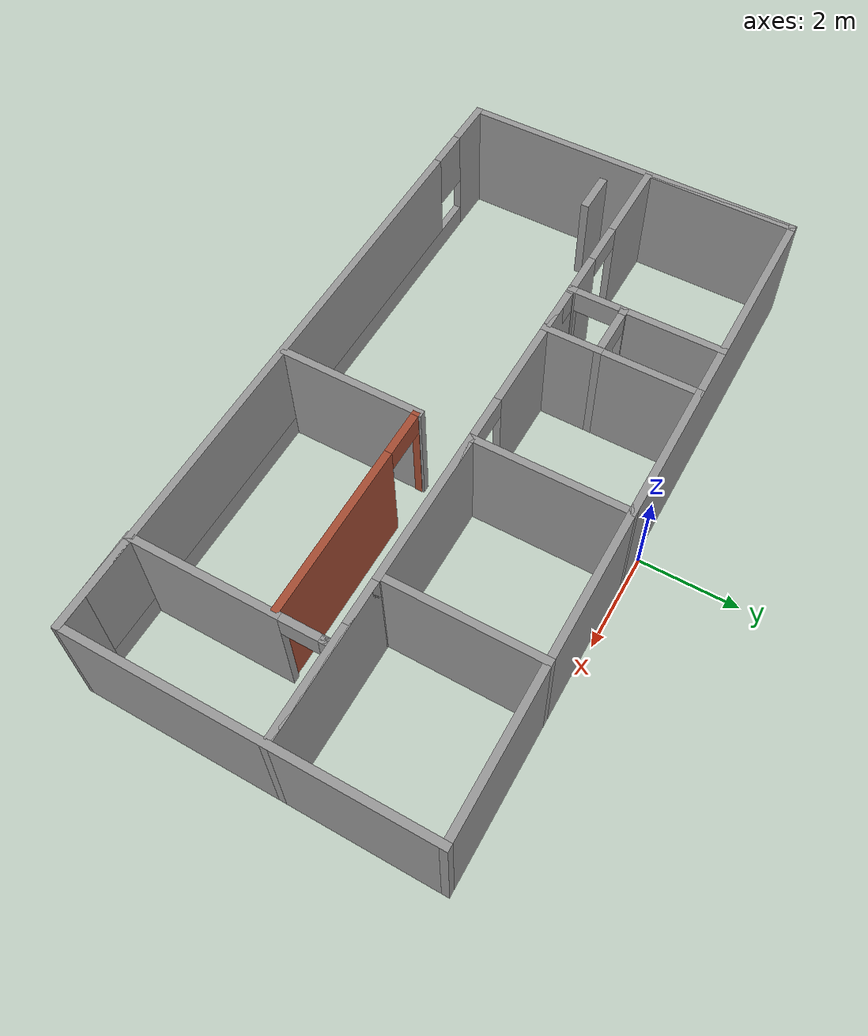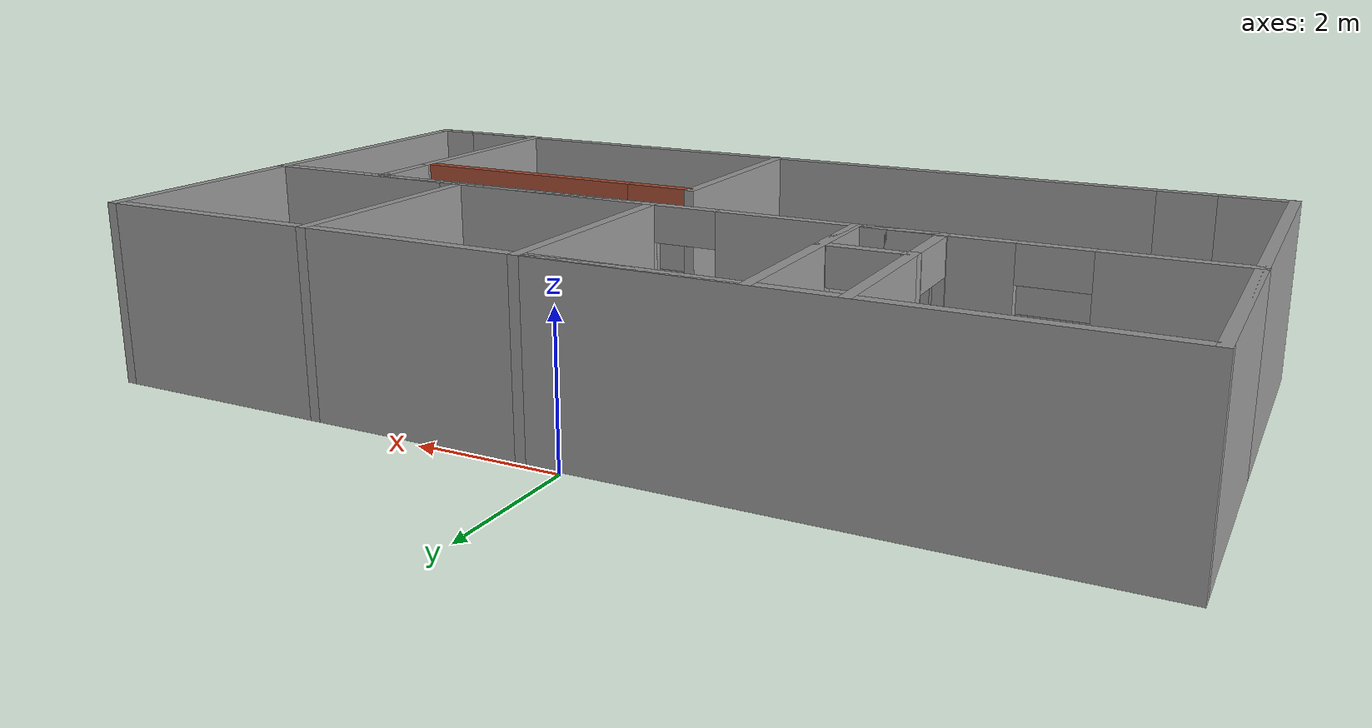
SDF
<?xml version='1.0'?>
<sdf version='1.6'>
  <model name='model'>
    <pose frame=''>0.015621 -3.70069 0 0 -0 0</pose>
    <link name='Door_0'>
      <collision name='Door_0_Collision'>
        <geometry>
          <box>
            <size>0.9 0.17 2</size>
          </box>
        </geometry>
        <pose frame=''>0 0 1 0 -0 0</pose>
      </collision>
      <visual name='Door_0_Visual'>
        <pose frame=''>0 0 1 0 -0 0</pose>
        <geometry>
          <box>
            <size>0.9 0.17 2</size>
          </box>
        </geometry>
        <material>
          <script>
            <uri>file://media/materials/scripts/gazebo.material</uri>
            <name>Gazebo/Grey</name>
          </script>
        </material>
      </visual>
      <pose frame=''>-6.39512 -0.487309 0 0 -0 0</pose>
    </link>
    <link name='Wall_0'>
      <collision name='Wall_0_Collision'>
        <geometry>
          <box>
            <size>7.2155 0.15 2.5</size>
          </box>
        </geometry>
        <pose frame=''>0 0 1.25 0 -0 0</pose>
      </collision>
      <visual name='Wall_0_Visual'>
        <pose frame=''>0 0 1.25 0 -0 0</pose>
        <geometry>
          <box>
            <size>7.2155 0.15 2.5</size>
          </box>
        </geometry>
        <material>
          <script>
            <uri>file://media/materials/scripts/gazebo.material</uri>
            <name>Gazebo/Grey</name>
          </script>
          <ambient>1 1 1 1</ambient>
        </material>
        <meta>
          <layer>0</layer>
        </meta>
      </visual>
      <pose frame=''>-6.92562 0.017941 0 0 -0 -1.5708</pose>
    </link>
    <link name='Wall_13'>
      <pose frame=''>-0.000621 -3.52631 0 0 -0 0</pose>
      <visual name='Wall_13_Visual_0'>
        <pose frame=''>-6.48325 0 1.25 0 -0 0</pose>
        <geometry>
          <box>
            <size>1.0335 0.15 2.5</size>
          </box>
        </geometry>
        <material>
          <script>
            <uri>file://media/materials/scripts/gazebo.material</uri>
            <name>Gazebo/Grey</name>
          </script>
          <ambient>1 1 1 1</ambient>
        </material>
        <meta>
          <layer>0</layer>
        </meta>
      </visual>
      <collision name='Wall_13_Collision_0'>
        <geometry>
          <box>
            <size>1.0335 0.15 2.5</size>
          </box>
        </geometry>
        <pose frame=''>-6.48325 0 1.25 0 -0 0</pose>
      </collision>
      <visual name='Wall_13_Visual_1'>
        <pose frame=''>0.51675 0 0.25 0 -0 0</pose>
        <geometry>
          <box>
            <size>12.9665 0.15 0.5</size>
          </box>
        </geometry>
        <material>
          <script>
            <uri>file://media/materials/scripts/gazebo.material</uri>
            <name>Gazebo/Grey</name>
          </script>
          <ambient>1 1 1 1</ambient>
        </material>
        <meta>
          <layer>0</layer>
        </meta>
      </visual>
      <collision name='Wall_13_Collision_1'>
        <geometry>
          <box>
            <size>12.9665 0.15 0.5</size>
          </box>
        </geometry>
        <pose frame=''>0.51675 0 0.25 0 -0 0</pose>
      </collision>
      <visual name='Wall_13_Visual_2'>
        <pose frame=''>0.91675 0 1.5 0 -0 0</pose>
        <geometry>
          <box>
            <size>12.1665 0.15 2</size>
          </box>
        </geometry>
        <material>
          <script>
            <uri>file://media/materials/scripts/gazebo.material</uri>
            <name>Gazebo/Grey</name>
          </script>
          <ambient>1 1 1 1</ambient>
        </material>
        <meta>
          <layer>0</layer>
        </meta>
      </visual>
      <collision name='Wall_13_Collision_2'>
        <geometry>
          <box>
            <size>12.1665 0.15 2</size>
          </box>
        </geometry>
        <pose frame=''>0.91675 0 1.5 0 -0 0</pose>
      </collision>
      <visual name='Wall_13_Visual_3'>
        <pose frame=''>-5.5665 0 1.9 0 -0 0</pose>
        <geometry>
          <box>
            <size>0.8 0.15 1.2</size>
          </box>
        </geometry>
        <material>
          <script>
            <uri>file://media/materials/scripts/gazebo.material</uri>
            <name>Gazebo/Grey</name>
          </script>
          <ambient>1 1 1 1</ambient>
        </material>
        <meta>
          <layer>0</layer>
        </meta>
      </visual>
      <collision name='Wall_13_Collision_3'>
        <geometry>
          <box>
            <size>0.8 0.15 1.2</size>
          </box>
        </geometry>
        <pose frame=''>-5.5665 0 1.9 0 -0 0</pose>
      </collision>
    </link>
    <link name='Wall_14'>
      <collision name='Wall_14_Collision'>
        <geometry>
          <box>
            <size>7.2155 0.15 2.5</size>
          </box>
        </geometry>
        <pose frame=''>0 0 1.25 0 -0 0</pose>
      </collision>
      <visual name='Wall_14_Visual'>
        <pose frame=''>0 0 1.25 0 -0 0</pose>
        <geometry>
          <box>
            <size>7.2155 0.15 2.5</size>
          </box>
        </geometry>
        <material>
          <script>
            <uri>file://media/materials/scripts/gazebo.material</uri>
            <name>Gazebo/Grey</name>
          </script>
          <ambient>1 1 1 1</ambient>
        </material>
        <meta>
          <layer>0</layer>
        </meta>
      </visual>
      <pose frame=''>6.92438 0.017941 0 0 -0 1.5708</pose>
    </link>
    <link name='Wall_15'>
      <collision name='Wall_15_Collision'>
        <geometry>
          <box>
            <size>14 0.15 2.5</size>
          </box>
        </geometry>
        <pose frame=''>0 0 1.25 0 -0 0</pose>
      </collision>
      <visual name='Wall_15_Visual'>
        <pose frame=''>0 0 1.25 0 -0 0</pose>
        <geometry>
          <box>
            <size>14 0.15 2.5</size>
          </box>
        </geometry>
        <material>
          <script>
            <uri>file://media/materials/scripts/gazebo.material</uri>
            <name>Gazebo/Grey</name>
          </script>
          <ambient>1 1 1 1</ambient>
        </material>
        <meta>
          <layer>0</layer>
        </meta>
      </visual>
      <pose frame=''>-0.000621 3.55069 0 0 -0 3.14159</pose>
    </link>
    <link name='Wall_20'>
      <collision name='Wall_20_Collision'>
        <geometry>
          <box>
            <size>3.25 0.15 2.5</size>
          </box>
        </geometry>
        <pose frame=''>0 0 1.25 0 -0 0</pose>
      </collision>
      <visual name='Wall_20_Visual'>
        <pose frame=''>0 0 1.25 0 -0 0</pose>
        <geometry>
          <box>
            <size>3.25 0.15 2.5</size>
          </box>
        </geometry>
        <material>
          <script>
            <uri>file://media/materials/scripts/gazebo.material</uri>
            <name>Gazebo/Grey</name>
          </script>
          <ambient>1 1 1 1</ambient>
        </material>
        <meta>
          <layer>0</layer>
        </meta>
      </visual>
      <pose frame=''>-6.92562 2.00069 0 0 -0 -1.5708</pose>
    </link>
    <link name='Wall_21'>
      <pose frame=''>-0.000621 0.450691 0 0 -0 0</pose>
      <visual name='Wall_21_Visual_0'>
        <pose frame=''>-6.08275 0 1.25 0 -0 0</pose>
        <geometry>
          <box>
            <size>1.8345 0.15 2.5</size>
          </box>
        </geometry>
        <material>
          <script>
            <uri>file://media/materials/scripts/gazebo.material</uri>
            <name>Gazebo/Grey</name>
          </script>
          <ambient>1 1 1 1</ambient>
        </material>
        <meta>
          <layer>0</layer>
        </meta>
      </visual>
      <collision name='Wall_21_Collision_0'>
        <geometry>
          <box>
            <size>1.8345 0.15 2.5</size>
          </box>
        </geometry>
        <pose frame=''>-6.08275 0 1.25 0 -0 0</pose>
      </collision>
      <visual name='Wall_21_Visual_1'>
        <pose frame=''>-2.32925 0 1.25 0 -0 0</pose>
        <geometry>
          <box>
            <size>3.8725 0.15 2.5</size>
          </box>
        </geometry>
        <material>
          <script>
            <uri>file://media/materials/scripts/gazebo.material</uri>
            <name>Gazebo/Grey</name>
          </script>
          <ambient>1 1 1 1</ambient>
        </material>
        <meta>
          <layer>0</layer>
        </meta>
      </visual>
      <collision name='Wall_21_Collision_1'>
        <geometry>
          <box>
            <size>3.8725 0.15 2.5</size>
          </box>
        </geometry>
        <pose frame=''>-2.32925 0 1.25 0 -0 0</pose>
      </collision>
      <visual name='Wall_21_Visual_2'>
        <pose frame=''>3.7535 0 1.25 0 -0 0</pose>
        <geometry>
          <box>
            <size>6.493 0.15 2.5</size>
          </box>
        </geometry>
        <material>
          <script>
            <uri>file://media/materials/scripts/gazebo.material</uri>
            <name>Gazebo/Grey</name>
          </script>
          <ambient>1 1 1 1</ambient>
        </material>
        <meta>
          <layer>0</layer>
        </meta>
      </visual>
      <collision name='Wall_21_Collision_2'>
        <geometry>
          <box>
            <size>6.493 0.15 2.5</size>
          </box>
        </geometry>
        <pose frame=''>3.7535 0 1.25 0 -0 0</pose>
      </collision>
      <visual name='Wall_21_Visual_3'>
        <pose frame=''>-4.7155 0 2.25 0 -0 0</pose>
        <geometry>
          <box>
            <size>0.9 0.15 0.5</size>
          </box>
        </geometry>
        <material>
          <script>
            <uri>file://media/materials/scripts/gazebo.material</uri>
            <name>Gazebo/Grey</name>
          </script>
          <ambient>1 1 1 1</ambient>
        </material>
        <meta>
          <layer>0</layer>
        </meta>
      </visual>
      <collision name='Wall_21_Collision_3'>
        <geometry>
          <box>
            <size>0.9 0.15 0.5</size>
          </box>
        </geometry>
        <pose frame=''>-4.7155 0 2.25 0 -0 0</pose>
      </collision>
      <visual name='Wall_21_Visual_4'>
        <pose frame=''>0.057 0 2.25 0 -0 0</pose>
        <geometry>
          <box>
            <size>0.9 0.15 0.5</size>
          </box>
        </geometry>
        <material>
          <script>
            <uri>file://media/materials/scripts/gazebo.material</uri>
            <name>Gazebo/Grey</name>
          </script>
          <ambient>1 1 1 1</ambient>
        </material>
        <meta>
          <layer>0</layer>
        </meta>
      </visual>
      <collision name='Wall_21_Collision_4'>
        <geometry>
          <box>
            <size>0.9 0.15 0.5</size>
          </box>
        </geometry>
        <pose frame=''>0.057 0 2.25 0 -0 0</pose>
      </collision>
    </link>
    <link name='Wall_23'>
      <pose frame=''>2.80688 -0.663809 0 0 -0 3.14159</pose>
      <visual name='Wall_23_Visual_0'>
        <pose frame=''>-0.49225 0 1.25 0 -0 0</pose>
        <geometry>
          <box>
            <size>3.5155 0.15 2.5</size>
          </box>
        </geometry>
        <material>
          <script>
            <uri>file://media/materials/scripts/gazebo.material</uri>
            <name>Gazebo/Bricks</name>
          </script>
          <ambient>0.435294 0.796078 0.67451 1</ambient>
        </material>
        <meta>
          <layer>0</layer>
        </meta>
      </visual>
      <collision name='Wall_23_Collision_0'>
        <geometry>
          <box>
            <size>3.5155 0.15 2.5</size>
          </box>
        </geometry>
        <pose frame=''>-0.49225 0 1.25 0 -0 0</pose>
      </collision>
      <visual name='Wall_23_Visual_1'>
        <pose frame=''>2.20775 0 1.25 0 -0 0</pose>
        <geometry>
          <box>
            <size>0.0845 0.15 2.5</size>
          </box>
        </geometry>
        <material>
          <script>
            <uri>file://media/materials/scripts/gazebo.material</uri>
            <name>Gazebo/Bricks</name>
          </script>
          <ambient>0.435294 0.796078 0.67451 1</ambient>
        </material>
        <meta>
          <layer>0</layer>
        </meta>
      </visual>
      <collision name='Wall_23_Collision_1'>
        <geometry>
          <box>
            <size>0.0845 0.15 2.5</size>
          </box>
        </geometry>
        <pose frame=''>2.20775 0 1.25 0 -0 0</pose>
      </collision>
      <visual name='Wall_23_Visual_2'>
        <pose frame=''>1.7155 0 2.25 0 -0 0</pose>
        <geometry>
          <box>
            <size>0.9 0.15 0.5</size>
          </box>
        </geometry>
        <material>
          <script>
            <uri>file://media/materials/scripts/gazebo.material</uri>
            <name>Gazebo/Bricks</name>
          </script>
          <ambient>0.435294 0.796078 0.67451 1</ambient>
        </material>
        <meta>
          <layer>0</layer>
        </meta>
      </visual>
      <collision name='Wall_23_Collision_2'>
        <geometry>
          <box>
            <size>0.9 0.15 0.5</size>
          </box>
        </geometry>
        <pose frame=''>1.7155 0 2.25 0 -0 0</pose>
      </collision>
    </link>
    <link name='Wall_25'>
      <collision name='Wall_25_Collision'>
        <geometry>
          <box>
            <size>2.00004 0.15 2.5</size>
          </box>
        </geometry>
        <pose frame=''>0 0 1.25 0 -0 0</pose>
      </collision>
      <visual name='Wall_25_Visual'>
        <pose frame=''>0 0 1.25 0 -0 0</pose>
        <geometry>
          <box>
            <size>2.00004 0.15 2.5</size>
          </box>
        </geometry>
        <material>
          <script>
            <uri>file://media/materials/scripts/gazebo.material</uri>
            <name>Gazebo/Grey</name>
          </script>
          <ambient>1 1 1 1</ambient>
        </material>
        <meta>
          <layer>0</layer>
        </meta>
      </visual>
      <pose frame=''>5.99938 -3.53206 0 0 -0 -3.12295</pose>
    </link>
    <link name='Wall_26'>
      <pose frame=''>5.07438 -1.62431 0 0 -0 1.5708</pose>
      <visual name='Wall_26_Visual_0'>
        <pose frame=''>-0.461 0 1.25 0 -0 0</pose>
        <geometry>
          <box>
            <size>3.078 0.15 2.5</size>
          </box>
        </geometry>
        <material>
          <script>
            <uri>file://media/materials/scripts/gazebo.material</uri>
            <name>Gazebo/Grey</name>
          </script>
          <ambient>1 1 1 1</ambient>
        </material>
        <meta>
          <layer>0</layer>
        </meta>
      </visual>
      <collision name='Wall_26_Collision_0'>
        <geometry>
          <box>
            <size>3.078 0.15 2.5</size>
          </box>
        </geometry>
        <pose frame=''>-0.461 0 1.25 0 -0 0</pose>
      </collision>
      <visual name='Wall_26_Visual_1'>
        <pose frame=''>1.989 0 1.25 0 -0 0</pose>
        <geometry>
          <box>
            <size>0.022 0.15 2.5</size>
          </box>
        </geometry>
        <material>
          <script>
            <uri>file://media/materials/scripts/gazebo.material</uri>
            <name>Gazebo/Grey</name>
          </script>
          <ambient>1 1 1 1</ambient>
        </material>
        <meta>
          <layer>0</layer>
        </meta>
      </visual>
      <collision name='Wall_26_Collision_1'>
        <geometry>
          <box>
            <size>0.022 0.15 2.5</size>
          </box>
        </geometry>
        <pose frame=''>1.989 0 1.25 0 -0 0</pose>
      </collision>
      <visual name='Wall_26_Visual_2'>
        <pose frame=''>1.528 0 2.25 0 -0 0</pose>
        <geometry>
          <box>
            <size>0.9 0.15 0.5</size>
          </box>
        </geometry>
        <material>
          <script>
            <uri>file://media/materials/scripts/gazebo.material</uri>
            <name>Gazebo/Grey</name>
          </script>
          <ambient>1 1 1 1</ambient>
        </material>
        <meta>
          <layer>0</layer>
        </meta>
      </visual>
      <collision name='Wall_26_Collision_2'>
        <geometry>
          <box>
            <size>0.9 0.15 0.5</size>
          </box>
        </geometry>
        <pose frame=''>1.528 0 2.25 0 -0 0</pose>
      </collision>
    </link>
    <link name='Wall_27'>
      <collision name='Wall_27_Collision'>
        <geometry>
          <box>
            <size>0.15 0.15 2.5</size>
          </box>
        </geometry>
        <pose frame=''>0 0 1.25 0 -0 0</pose>
      </collision>
      <visual name='Wall_27_Visual'>
        <pose frame=''>0 0 1.25 0 -0 0</pose>
        <geometry>
          <box>
            <size>0.15 0.15 2.5</size>
          </box>
        </geometry>
        <material>
          <script>
            <uri>file://media/materials/scripts/gazebo.material</uri>
            <name>Gazebo/Grey</name>
          </script>
          <ambient>1 1 1 1</ambient>
        </material>
        <meta>
          <layer>0</layer>
        </meta>
      </visual>
      <pose frame=''>5.07438 0.300691 0 0 -0 0</pose>
    </link>
    <link name='Wall_29'>
      <pose frame=''>3.74938 0.450691 0 0 -0 3.14159</pose>
      <visual name='Wall_29_Visual_0'>
        <pose frame=''>-2.09075 0 1.25 0 -0 0</pose>
        <geometry>
          <box>
            <size>2.3185 0.15 2.5</size>
          </box>
        </geometry>
        <material>
          <script>
            <uri>file://media/materials/scripts/gazebo.material</uri>
            <name>Gazebo/Grey</name>
          </script>
          <ambient>1 1 1 1</ambient>
        </material>
        <meta>
          <layer>0</layer>
        </meta>
      </visual>
      <collision name='Wall_29_Collision_0'>
        <geometry>
          <box>
            <size>2.3185 0.15 2.5</size>
          </box>
        </geometry>
        <pose frame=''>-2.09075 0 1.25 0 -0 0</pose>
      </collision>
      <visual name='Wall_29_Visual_1'>
        <pose frame=''>1.60925 0 1.25 0 -0 0</pose>
        <geometry>
          <box>
            <size>3.2815 0.15 2.5</size>
          </box>
        </geometry>
        <material>
          <script>
            <uri>file://media/materials/scripts/gazebo.material</uri>
            <name>Gazebo/Grey</name>
          </script>
          <ambient>1 1 1 1</ambient>
        </material>
        <meta>
          <layer>0</layer>
        </meta>
      </visual>
      <collision name='Wall_29_Collision_1'>
        <geometry>
          <box>
            <size>3.2815 0.15 2.5</size>
          </box>
        </geometry>
        <pose frame=''>1.60925 0 1.25 0 -0 0</pose>
      </collision>
      <visual name='Wall_29_Visual_2'>
        <pose frame=''>-0.4815 0 2.25 0 -0 0</pose>
        <geometry>
          <box>
            <size>0.9 0.15 0.5</size>
          </box>
        </geometry>
        <material>
          <script>
            <uri>file://media/materials/scripts/gazebo.material</uri>
            <name>Gazebo/Grey</name>
          </script>
          <ambient>1 1 1 1</ambient>
        </material>
        <meta>
          <layer>0</layer>
        </meta>
      </visual>
      <collision name='Wall_29_Collision_2'>
        <geometry>
          <box>
            <size>0.9 0.15 0.5</size>
          </box>
        </geometry>
        <pose frame=''>-0.4815 0 2.25 0 -0 0</pose>
      </collision>
    </link>
    <link name='Wall_30'>
      <collision name='Wall_30_Collision'>
        <geometry>
          <box>
            <size>3.25 0.15 2.5</size>
          </box>
        </geometry>
        <pose frame=''>0 0 1.25 0 -0 0</pose>
      </collision>
      <visual name='Wall_30_Visual'>
        <pose frame=''>0 0 1.25 0 -0 0</pose>
        <geometry>
          <box>
            <size>3.25 0.15 2.5</size>
          </box>
        </geometry>
        <material>
          <script>
            <uri>file://media/materials/scripts/gazebo.material</uri>
            <name>Gazebo/Grey</name>
          </script>
          <ambient>1 1 1 1</ambient>
        </material>
        <meta>
          <layer>0</layer>
        </meta>
      </visual>
      <pose frame=''>0.574379 2.00069 0 0 -0 1.5708</pose>
    </link>
    <link name='Wall_31'>
      <collision name='Wall_31_Collision'>
        <geometry>
          <box>
            <size>3 0.15 2.5</size>
          </box>
        </geometry>
        <pose frame=''>0 0 1.25 0 -0 0</pose>
      </collision>
      <visual name='Wall_31_Visual'>
        <pose frame=''>0 0 1.25 0 -0 0</pose>
        <geometry>
          <box>
            <size>3 0.15 2.5</size>
          </box>
        </geometry>
        <material>
          <script>
            <uri>file://media/materials/scripts/gazebo.material</uri>
            <name>Gazebo/Grey</name>
          </script>
          <ambient>1 1 1 1</ambient>
        </material>
        <meta>
          <layer>0</layer>
        </meta>
      </visual>
      <pose frame=''>-0.850621 3.55069 0 0 -0 3.14159</pose>
    </link>
    <link name='Wall_32'>
      <collision name='Wall_32_Collision'>
        <geometry>
          <box>
            <size>3.25 0.15 2.5</size>
          </box>
        </geometry>
        <pose frame=''>0 0 1.25 0 -0 0</pose>
      </collision>
      <visual name='Wall_32_Visual'>
        <pose frame=''>0 0 1.25 0 -0 0</pose>
        <geometry>
          <box>
            <size>3.25 0.15 2.5</size>
          </box>
        </geometry>
        <material>
          <script>
            <uri>file://media/materials/scripts/gazebo.material</uri>
            <name>Gazebo/Grey</name>
          </script>
          <ambient>1 1 1 1</ambient>
        </material>
        <meta>
          <layer>0</layer>
        </meta>
      </visual>
      <pose frame=''>-2.27562 2.00069 0 0 -0 -1.5708</pose>
    </link>
    <link name='Wall_33'>
      <pose frame=''>-2.82562 0.450691 0 0 -0 3.14159</pose>
      <visual name='Wall_33_Visual_0'>
        <pose frame=''>-0.54675 0 1.25 0 -0 0</pose>
        <geometry>
          <box>
            <size>0.1565 0.15 2.5</size>
          </box>
        </geometry>
        <material>
          <script>
            <uri>file://media/materials/scripts/gazebo.material</uri>
            <name>Gazebo/Grey</name>
          </script>
          <ambient>1 1 1 1</ambient>
        </material>
        <meta>
          <layer>0</layer>
        </meta>
      </visual>
      <collision name='Wall_33_Collision_0'>
        <geometry>
          <box>
            <size>0.1565 0.15 2.5</size>
          </box>
        </geometry>
        <pose frame=''>-0.54675 0 1.25 0 -0 0</pose>
      </collision>
      <visual name='Wall_33_Visual_1'>
        <pose frame=''>0.52825 0 1.25 0 -0 0</pose>
        <geometry>
          <box>
            <size>0.1935 0.15 2.5</size>
          </box>
        </geometry>
        <material>
          <script>
            <uri>file://media/materials/scripts/gazebo.material</uri>
            <name>Gazebo/Grey</name>
          </script>
          <ambient>1 1 1 1</ambient>
        </material>
        <meta>
          <layer>0</layer>
        </meta>
      </visual>
      <collision name='Wall_33_Collision_1'>
        <geometry>
          <box>
            <size>0.1935 0.15 2.5</size>
          </box>
        </geometry>
        <pose frame=''>0.52825 0 1.25 0 -0 0</pose>
      </collision>
      <visual name='Wall_33_Visual_2'>
        <pose frame=''>-0.0185 0 2.25 0 -0 0</pose>
        <geometry>
          <box>
            <size>0.9 0.15 0.5</size>
          </box>
        </geometry>
        <material>
          <script>
            <uri>file://media/materials/scripts/gazebo.material</uri>
            <name>Gazebo/Grey</name>
          </script>
          <ambient>1 1 1 1</ambient>
        </material>
        <meta>
          <layer>0</layer>
        </meta>
      </visual>
      <collision name='Wall_33_Collision_2'>
        <geometry>
          <box>
            <size>0.9 0.15 0.5</size>
          </box>
        </geometry>
        <pose frame=''>-0.0185 0 2.25 0 -0 0</pose>
      </collision>
    </link>
    <link name='Wall_34'>
      <pose frame=''>-3.37562 2.00069 0 0 -0 1.5708</pose>
      <visual name='Wall_34_Visual_0'>
        <pose frame=''>-1.534 0 1.25 0 -0 0</pose>
        <geometry>
          <box>
            <size>0.182 0.15 2.5</size>
          </box>
        </geometry>
        <material>
          <script>
            <uri>file://media/materials/scripts/gazebo.material</uri>
            <name>Gazebo/Grey</name>
          </script>
          <ambient>1 1 1 1</ambient>
        </material>
        <meta>
          <layer>0</layer>
        </meta>
      </visual>
      <collision name='Wall_34_Collision_0'>
        <geometry>
          <box>
            <size>0.182 0.15 2.5</size>
          </box>
        </geometry>
        <pose frame=''>-1.534 0 1.25 0 -0 0</pose>
      </collision>
      <visual name='Wall_34_Visual_1'>
        <pose frame=''>0.541 0 1.25 0 -0 0</pose>
        <geometry>
          <box>
            <size>2.168 0.15 2.5</size>
          </box>
        </geometry>
        <material>
          <script>
            <uri>file://media/materials/scripts/gazebo.material</uri>
            <name>Gazebo/Grey</name>
          </script>
          <ambient>1 1 1 1</ambient>
        </material>
        <meta>
          <layer>0</layer>
        </meta>
      </visual>
      <collision name='Wall_34_Collision_1'>
        <geometry>
          <box>
            <size>2.168 0.15 2.5</size>
          </box>
        </geometry>
        <pose frame=''>0.541 0 1.25 0 -0 0</pose>
      </collision>
      <visual name='Wall_34_Visual_2'>
        <pose frame=''>-0.993 0 2.25 0 -0 0</pose>
        <geometry>
          <box>
            <size>0.9 0.15 0.5</size>
          </box>
        </geometry>
        <material>
          <script>
            <uri>file://media/materials/scripts/gazebo.material</uri>
            <name>Gazebo/Grey</name>
          </script>
          <ambient>1 1 1 1</ambient>
        </material>
        <meta>
          <layer>0</layer>
        </meta>
      </visual>
      <collision name='Wall_34_Collision_2'>
        <geometry>
          <box>
            <size>0.9 0.15 0.5</size>
          </box>
        </geometry>
        <pose frame=''>-0.993 0 2.25 0 -0 0</pose>
      </collision>
    </link>
    <link name='Wall_36'>
      <collision name='Wall_36_Collision'>
        <geometry>
          <box>
            <size>3 0.15 2.5</size>
          </box>
        </geometry>
        <pose frame=''>0 0 1.25 0 -0 0</pose>
      </collision>
      <visual name='Wall_36_Visual'>
        <pose frame=''>0 0 1.25 0 -0 0</pose>
        <geometry>
          <box>
            <size>3 0.15 2.5</size>
          </box>
        </geometry>
        <material>
          <script>
            <uri>file://media/materials/scripts/gazebo.material</uri>
            <name>Gazebo/Grey</name>
          </script>
          <ambient>1 1 1 1</ambient>
        </material>
        <meta>
          <layer>0</layer>
        </meta>
      </visual>
      <pose frame=''>0.550879 -2.04731 0 0 -0 -1.5708</pose>
    </link>
    <link name='Wall_38'>
      <collision name='Wall_38_Collision'>
        <geometry>
          <box>
            <size>1.25 0.15 2.5</size>
          </box>
        </geometry>
        <pose frame=''>0 0 1.25 0 -0 0</pose>
      </collision>
      <visual name='Wall_38_Visual'>
        <pose frame=''>0 0 1.25 0 -0 0</pose>
        <geometry>
          <box>
            <size>1.25 0.15 2.5</size>
          </box>
        </geometry>
        <material>
          <script>
            <uri>file://media/materials/scripts/gazebo.material</uri>
            <name>Gazebo/Grey</name>
          </script>
          <ambient>1 1 1 1</ambient>
        </material>
        <meta>
          <layer>0</layer>
        </meta>
      </visual>
      <pose frame=''>-2.27562 1.00069 0 0 -0 1.5708</pose>
    </link>
    <link name='Wall_39'>
      <pose frame=''>-2.82562 1.55069 0 0 -0 3.14159</pose>
      <visual name='Wall_39_Visual_0'>
        <pose frame=''>-0.54675 0 1.25 0 -0 0</pose>
        <geometry>
          <box>
            <size>0.1565 0.15 2.5</size>
          </box>
        </geometry>
        <material>
          <script>
            <uri>file://media/materials/scripts/gazebo.material</uri>
            <name>Gazebo/Grey</name>
          </script>
          <ambient>1 1 1 1</ambient>
        </material>
        <meta>
          <layer>0</layer>
        </meta>
      </visual>
      <collision name='Wall_39_Collision_0'>
        <geometry>
          <box>
            <size>0.1565 0.15 2.5</size>
          </box>
        </geometry>
        <pose frame=''>-0.54675 0 1.25 0 -0 0</pose>
      </collision>
      <visual name='Wall_39_Visual_1'>
        <pose frame=''>0.52825 0 1.25 0 -0 0</pose>
        <geometry>
          <box>
            <size>0.1935 0.15 2.5</size>
          </box>
        </geometry>
        <material>
          <script>
            <uri>file://media/materials/scripts/gazebo.material</uri>
            <name>Gazebo/Grey</name>
          </script>
          <ambient>1 1 1 1</ambient>
        </material>
        <meta>
          <layer>0</layer>
        </meta>
      </visual>
      <collision name='Wall_39_Collision_1'>
        <geometry>
          <box>
            <size>0.1935 0.15 2.5</size>
          </box>
        </geometry>
        <pose frame=''>0.52825 0 1.25 0 -0 0</pose>
      </collision>
      <visual name='Wall_39_Visual_2'>
        <pose frame=''>-0.0185 0 2.25 0 -0 0</pose>
        <geometry>
          <box>
            <size>0.9 0.15 0.5</size>
          </box>
        </geometry>
        <material>
          <script>
            <uri>file://media/materials/scripts/gazebo.material</uri>
            <name>Gazebo/Grey</name>
          </script>
          <ambient>1 1 1 1</ambient>
        </material>
        <meta>
          <layer>0</layer>
        </meta>
      </visual>
      <collision name='Wall_39_Collision_2'>
        <geometry>
          <box>
            <size>0.9 0.15 0.5</size>
          </box>
        </geometry>
        <pose frame=''>-0.0185 0 2.25 0 -0 0</pose>
      </collision>
    </link>
    <link name='Wall_41'>
      <pose frame=''>2.12438 0.450691 0 0 -0 0</pose>
      <visual name='Wall_41_Visual_0'>
        <pose frame=''>-1.5425 0 1.25 0 -0 0</pose>
        <geometry>
          <box>
            <size>0.165 0.15 2.5</size>
          </box>
        </geometry>
        <material>
          <script>
            <uri>file://media/materials/scripts/gazebo.material</uri>
            <name>Gazebo/Grey</name>
          </script>
          <ambient>1 1 1 1</ambient>
        </material>
        <meta>
          <layer>0</layer>
        </meta>
      </visual>
      <collision name='Wall_41_Collision_0'>
        <geometry>
          <box>
            <size>0.165 0.15 2.5</size>
          </box>
        </geometry>
        <pose frame=''>-1.5425 0 1.25 0 -0 0</pose>
      </collision>
      <visual name='Wall_41_Visual_1'>
        <pose frame=''>0.5325 0 1.25 0 -0 0</pose>
        <geometry>
          <box>
            <size>2.185 0.15 2.5</size>
          </box>
        </geometry>
        <material>
          <script>
            <uri>file://media/materials/scripts/gazebo.material</uri>
            <name>Gazebo/Grey</name>
          </script>
          <ambient>1 1 1 1</ambient>
        </material>
        <meta>
          <layer>0</layer>
        </meta>
      </visual>
      <collision name='Wall_41_Collision_1'>
        <geometry>
          <box>
            <size>2.185 0.15 2.5</size>
          </box>
        </geometry>
        <pose frame=''>0.5325 0 1.25 0 -0 0</pose>
      </collision>
      <visual name='Wall_41_Visual_2'>
        <pose frame=''>-1.01 0 2.25 0 -0 0</pose>
        <geometry>
          <box>
            <size>0.9 0.15 0.5</size>
          </box>
        </geometry>
        <material>
          <script>
            <uri>file://media/materials/scripts/gazebo.material</uri>
            <name>Gazebo/Grey</name>
          </script>
          <ambient>1 1 1 1</ambient>
        </material>
        <meta>
          <layer>0</layer>
        </meta>
      </visual>
      <collision name='Wall_41_Collision_2'>
        <geometry>
          <box>
            <size>0.9 0.15 0.5</size>
          </box>
        </geometry>
        <pose frame=''>-1.01 0 2.25 0 -0 0</pose>
      </collision>
    </link>
    <link name='Wall_42'>
      <collision name='Wall_42_Collision'>
        <geometry>
          <box>
            <size>3.25 0.15 2.5</size>
          </box>
        </geometry>
        <pose frame=''>0 0 1.25 0 -0 0</pose>
      </collision>
      <visual name='Wall_42_Visual'>
        <pose frame=''>0 0 1.25 0 -0 0</pose>
        <geometry>
          <box>
            <size>3.25 0.15 2.5</size>
          </box>
        </geometry>
        <material>
          <script>
            <uri>file://media/materials/scripts/gazebo.material</uri>
            <name>Gazebo/Grey</name>
          </script>
          <ambient>1 1 1 1</ambient>
        </material>
        <meta>
          <layer>0</layer>
        </meta>
      </visual>
      <pose frame=''>3.67438 2.00069 0 0 -0 1.5708</pose>
    </link>
    <static>1</static>
  </model>
</sdf>
